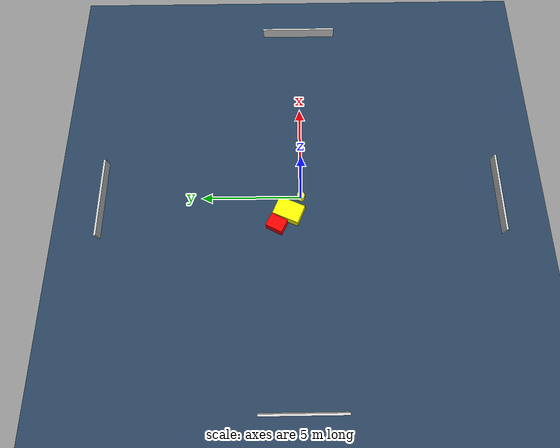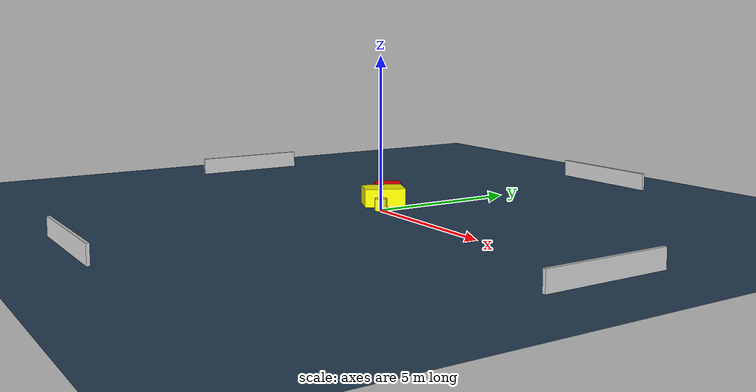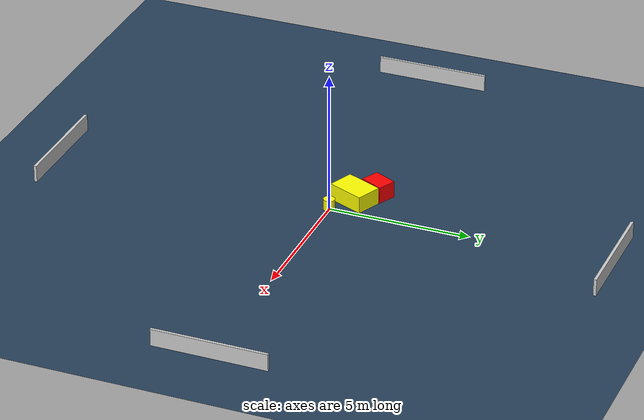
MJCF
<?xml version="1.0" ?>
<mujoco model="generated_environment">
  <option timestep="0.01" integrator="RK4" cone="elliptic"/>
  <default>
    <geom density="1"/>
  </default>
  <asset>
    <texture builtin="gradient" height="3072" name="skybox" rgb1="0.3 0.5 0.7" rgb2="0 0 0" type="skybox" width="512"/>
    <texture builtin="checker" height="300" name="groundplane" rgb1="0.2 0.3 0.4" rgb2="0.1 0.2 0.3" type="2d" width="300"/>
    <material name="groundplane" reflectance="0.2" texrepeat="5 5" texture="groundplane"/>
  </asset>
  <worldbody>
    <light dir="0 0 -1" directional="true" pos="0 0 1.5"/>
    <geom condim="3" friction="0.5 0.005 0.001" material="groundplane" name="floor" pos="0 0 0" size="0 0 0.05" type="plane"/>
    <body name="walls">
      <geom name="wall_1" condim="4" pos="-10.0 0.0 0.3" rgba="0.800000011920929 0.800000011920929 0.800000011920929 1.0" size="0.05 2.0 0.3" type="box"/>
      <geom name="wall_2" condim="4" pos="10.0 0.0 0.3" rgba="0.800000011920929 0.800000011920929 0.800000011920929 1.0" size="0.05 2.0 0.3" type="box"/>
      <geom name="wall_3" condim="4" pos="0.0 -10.0 0.3" rgba="0.800000011920929 0.800000011920929 0.800000011920929 1.0" size="2.0 0.05 0.3" type="box"/>
      <geom name="wall_4" condim="4" pos="0.0 10.0 0.3" rgba="0.800000011920929 0.800000011920929 0.800000011920929 1.0" size="2.0 0.05 0.3" type="box"/>
    </body>
    <body name="robot">
      <joint name="joint_x" type="slide" pos="0 0 0" axis="1 0 0"/>
      <joint name="joint_y" type="slide" pos="0 0 0" axis="0 1 0"/>
      <geom name="robot" type="cylinder" pos="0.0 0.0 0.2" size="0.2 0.2 0.0" mass="5.0" friction="1.0 0.005 0.0001" condim="4" rgba="1.0 1.0 0.0 1.0"/>
    </body>
    <body name="obstacle_1_movable">
      <geom name="obstacle_1_movable" condim="4" pos="-0.8024624601663117 0.6076029004700142 0.3" euler="0 0 66.68829241990552" friction="0.0 0.005 0.001" rgba="1.0 1.0 0.0 1.0" size="0.6781850547908131 0.4682296539617923 0.3" type="box" mass="0.1"/>
      <joint type="free"/>
    </body>
    <body name="obstacle_2_static">
      <geom name="obstacle_2_static" condim="4" pos="-1.4662958324231468 1.2020371200418654 0.3" euler="0 0 333.03353842345325" friction="0.0 0.005 0.001" rgba="1.0 0.0 0.0 1.0" size="0.33752922659985174 0.43273053214033413 0.3" type="box"/>
    </body>
  </worldbody>
  <actuator>
    <motor name="actuator_x" joint="joint_x" gear="1" ctrlrange="-1 1"/>
    <motor name="actuator_y" joint="joint_y" gear="1" ctrlrange="-1 1"/>
  </actuator>
</mujoco>
